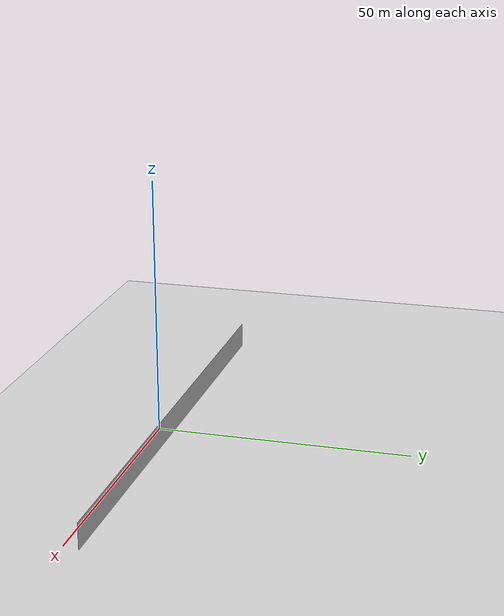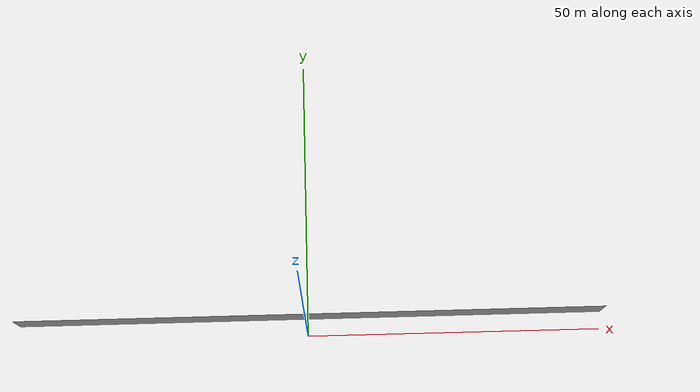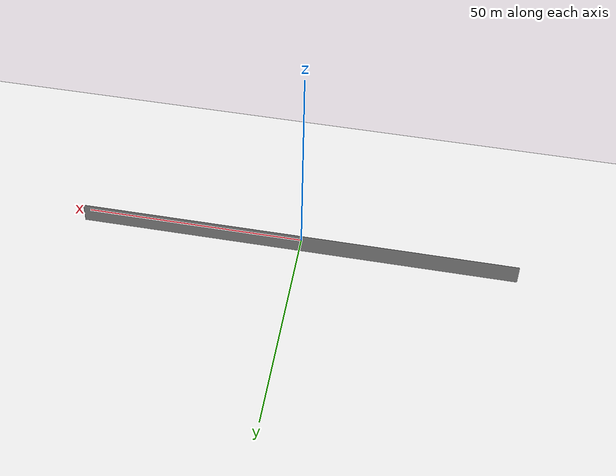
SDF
<sdf version="1.6">
 <world name="default">
  <scene><shadows>0</shadows><background>1 1 1 1</background><ambient>0.4 0.4 0.4 1</ambient></scene>
  <light name="sun" type="directional">
   <pose>0 -3 10 0 -0 0</pose>
   <diffuse>0.8 0.8 0.8 1</diffuse>
   <specular>0.1 0.1 0.1 1</specular>
   <attenuation>
    <range>1000</range>
    <constant>0.9</constant>
    <linear>0.01</linear>
    <quadratic>0.001</quadratic>
   </attenuation>
   <direction>-0.5 0.5 -1</direction>
  </light>
  <model name="ground_plane">
   <static>1</static>
   <link name="link">
    <collision name="collision">
     <geometry><plane><normal>0 0 1</normal><size>100 100</size></plane></geometry>
     <surface><friction><ode><mu>100</mu><mu2>50</mu2></ode></friction></surface>
    </collision>
    <visual name="visual">
     <cast_shadows>0</cast_shadows>
     <geometry><plane><normal>0 0 1</normal><size>100 100</size></plane></geometry>
     <material>
      <script><uri>file://media/materials/scripts/gazebo.material</uri><name>Gazebo/White</name></script>
     </material>
    </visual>
   </link>
  </model>
  <model name="box1">
   <pose>0 2 1.3 0 -0 0</pose>
   <link name="link">
    <collision name="collision"><geometry><sphere><radius>0.05</radius></sphere></geometry></collision>
    <visual name="visual">
     <geometry><sphere><radius>0.05</radius></sphere></geometry>
     <material>
      <script><name>Gazebo/Blue</name><uri>file://media/materials/scripts/gazebo.material</uri></script>
     </material>
    </visual>
    <inertial>
     <inertia><ixx>1</ixx><ixy>0</ixy><ixz>0</ixz><iyy>1</iyy><iyz>0</iyz><izz>1</izz></inertia>
     <mass>1</mass>
    </inertial>
   </link>
  </model>
  <model name="box2">
   <pose>-0.15 2 1.3 0 -0 0</pose>
   <link name="link">
    <collision name="collision"><geometry><sphere><radius>0.05</radius></sphere></geometry></collision>
    <visual name="visual">
     <geometry><sphere><radius>0.05</radius></sphere></geometry>
     <material>
      <script><name>Gazebo/Red</name><uri>file://media/materials/scripts/gazebo.material</uri></script>
     </material>
    </visual>
    <inertial>
     <inertia><ixx>1</ixx><ixy>0</ixy><ixz>0</ixz><iyy>1</iyy><iyz>0</iyz><izz>1</izz></inertia>
     <mass>1</mass>
    </inertial>
   </link>
  </model>
  <model name="box3">
   <pose>0 2 1.15 0 -0 0</pose>
   <link name="link">
    <collision name="collision"><geometry><sphere><radius>0.05</radius></sphere></geometry></collision>
    <visual name="visual">
     <geometry><sphere><radius>0.05</radius></sphere></geometry>
     <material>
      <script><name>Gazebo/Green</name><uri>file://media/materials/scripts/gazebo.material</uri></script>
     </material>
    </visual>
    <inertial>
     <inertia><ixx>1</ixx><ixy>0</ixy><ixz>0</ixz><iyy>1</iyy><iyz>0</iyz><izz>1</izz></inertia>
     <mass>1</mass>
    </inertial>
   </link>
  </model>
  <model name="box4">
   <pose>-0.15 2 1.15 0 -0 0</pose>
   <link name="link">
    <collision name="collision"><geometry><sphere><radius>0.05</radius></sphere></geometry></collision>
    <visual name="visual">
     <geometry><sphere><radius>0.05</radius></sphere></geometry>
     <material>
      <script><name>Gazebo/Yellow</name><uri>file://media/materials/scripts/gazebo.material</uri></script>
     </material>
    </visual>
    <inertial>
     <inertia><ixx>1</ixx><ixy>0</ixy><ixz>0</ixz><iyy>1</iyy><iyz>0</iyz><izz>1</izz></inertia>
     <mass>1</mass>
    </inertial>
   </link>
  </model>
  <gravity>0 0 0</gravity>
  <magnetic_field>6e-06 2.3e-05 -4.2e-05</magnetic_field>
  <atmosphere type="adiabatic"/>
  <physics name="default_physics" default="0" type="ode">
   <max_step_size>0.001</max_step_size>
   <real_time_factor>1</real_time_factor>
   <real_time_update_rate>1000</real_time_update_rate>
  </physics>
  <scene><ambient>0.4 0.4 0.4 1</ambient><background>0.7 0.7 0.7 1</background><shadows>1</shadows></scene>
  <spherical_coordinates>
   <surface_model>EARTH_WGS84</surface_model>
   <latitude_deg>0</latitude_deg>
   <longitude_deg>0</longitude_deg>
   <elevation>0</elevation>
   <heading_deg>0</heading_deg>
  </spherical_coordinates>
  <model name="box">
   <pose>0.5 3 0 0 -0 0</pose>
   <link name="link">
    <visual name="visual">
     <geometry><box><size>100 0.001 10</size></box></geometry>
     <material>
      <script>
       <uri>model://grey_wall/materials/scripts</uri>
       <uri>model://grey_wall/materials/textures</uri>
       <name>vrc/grey_wall</name>
      </script>
     </material>
    </visual>
    <inertial>
     <inertia><ixx>1</ixx><ixy>0</ixy><ixz>0</ixz><iyy>1</iyy><iyz>0</iyz><izz>1</izz></inertia>
     <mass>1</mass>
    </inertial>
   </link>
  </model>
  <model name="aruco_marker">
   <link name="aruco_marker::link">
    <inertial>
     <mass>0.001</mass>
     <inertia>
      <ixx>3.75e-06</ixx>
      <ixy>0</ixy>
      <ixz>0</ixz>
      <iyy>1.875e-06</iyy>
      <iyz>0</iyz>
      <izz>1.875e-06</izz>
     </inertia>
    </inertial>
    <visual name="front_visual">
     <pose>5e-05 0 0 0 -0 0</pose>
     <geometry><box><size>0.0001 0.15 0.15</size></box></geometry>
     <material>
      <script>
       <uri>model://aruco_marker/materials/scripts</uri>
       <uri>model://aruco_marker/materials/textures</uri>
       <name>Marker</name>
      </script>
     </material>
    </visual>
    <visual name="rear_visual">
     <pose>-5e-05 0 0 0 -0 0</pose>
     <geometry><box><size>0.0001 0.15 0.15</size></box></geometry>
    </visual>
    <collision name="collision"><geometry><box><size>0.0001 0.15 0.15</size></box></geometry></collision>
   </link>
   <pose>0 1.5 1.15 0 0 -1.57</pose>
  </model>
 </world>
</sdf>
